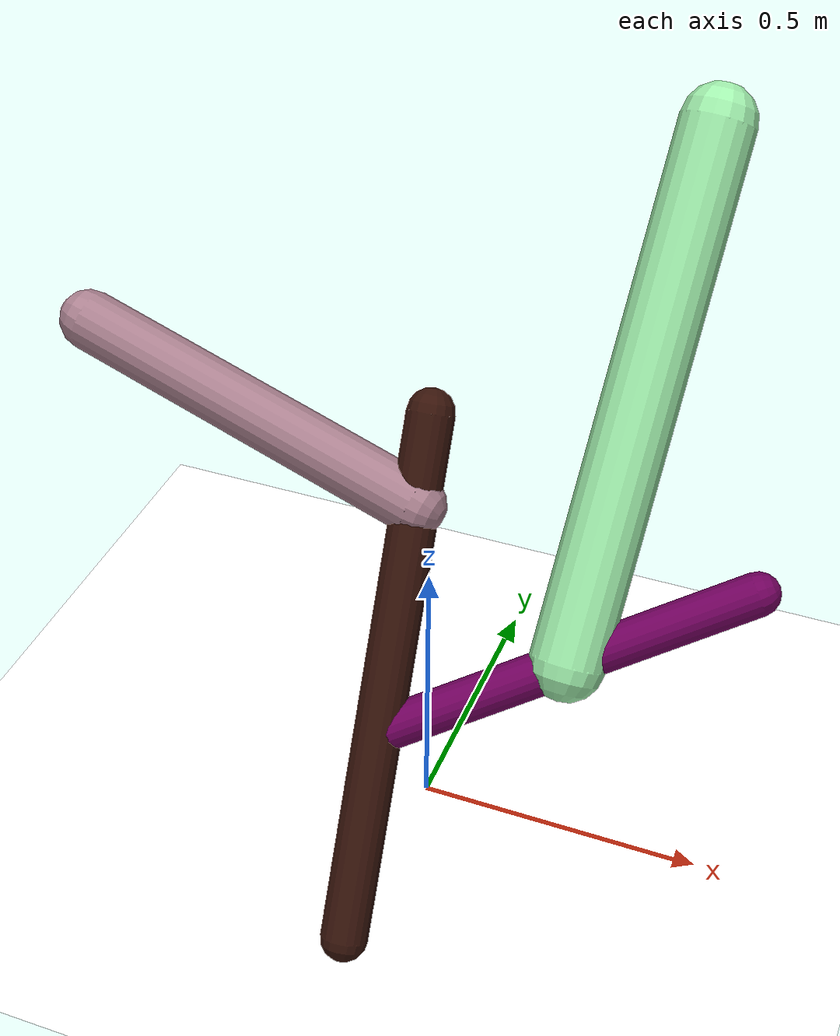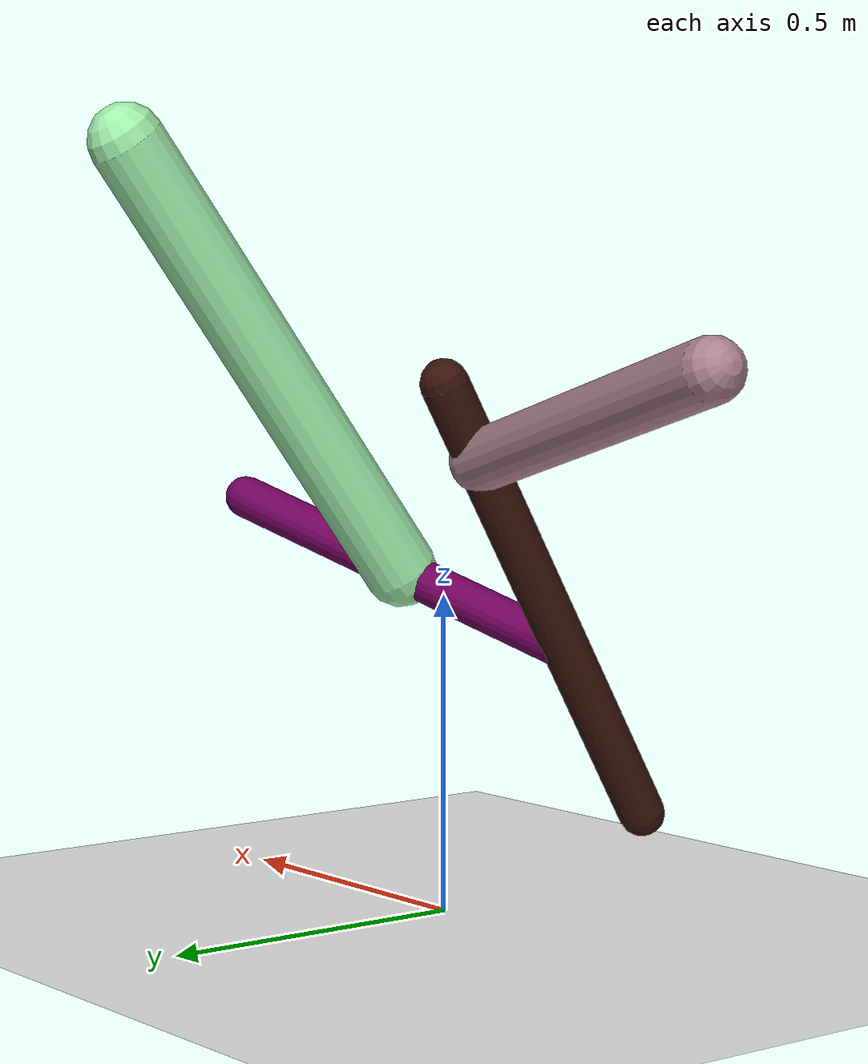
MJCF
<mujoco model="morphology">
  <option timestep="0.01"/>
  <default>
    <default class="/"/>
    <default class="0/"/>
    <default class="0/1/"/>
    <default class="0/1/2/"/>
    <default class="0/3/"/>
  </default>
  <asset>
    <texture name="texplane" type="2d" builtin="checker" rgb1="0.10000000000000001 0.20000000000000001 0.29999999999999999" rgb2="0.20000000000000001 0.29999999999999999 0.40000000000000002" width="300" height="300"/>
    <material name="MatPlane" class="/" texture="texplane" texrepeat="20 20" specular="1" shininess="1" reflectance="0.5"/>
  </asset>
  <worldbody>
    <light name="//unnamed_light_0" class="/" directional="true" pos="0 0 1.5" dir="0 0 -1.3" cutoff="100" exponent="1" diffuse="1 1 1" specular="0.10000000000000001 0.10000000000000001 0.10000000000000001"/>
    <geom name="ground" class="/" type="plane" size="15 15 0.5" material="MatPlane" rgba="1 1 1 1"/>
    <site name="body" class="/" size="9.9999999999999995e-07 9.9999999999999995e-07 9.9999999999999995e-07" pos="0 0 0.83015075922012327"/>
    <body pos="0 0 0.83015075922012327" name="0/">
      <freejoint name="0/"/>
      <geom name="0/geom" class="0/" type="capsule" contype="1" conaffinity="1" condim="3" size="0.039179312641141939" rgba="0.21542325064921308 0.076142153702728921 0.041197919339613143 1" friction="0.59999999999999998 0.10000000000000001 0.10000000000000001" fromto="0 0 0 0.029095847067996061 -0.44674231855707353 -0.73015075886629333"/>
      <site name="0/end0" class="0/" size="0.0050000000000000001" pos="0.029095847067996061 -0.44674231855707353 -0.73015075886629333"/>
      <site name="0/attach1" class="0/" size="9.9999999999999995e-07 9.9999999999999995e-07 9.9999999999999995e-07" pos="0.017434994079992282 -0.26769970508581781 -0.43752546982343171"/>
      <body pos="0.017434994079992282 -0.26769970508581781 -0.43752546982343171" name="0/1/">
        <joint name="0/1/joint/" class="0/" type="hinge" axis="0 0 1" limited="true" range="-39.501779957731102 39.501779957731102"/>
        <geom name="0/1/geom" class="0/1/" type="capsule" contype="1" conaffinity="1" condim="3" size="0.035498298403293334" rgba="0.43360503629423641 0.00039080240934319388 0.36111949650194941 1" friction="0.59999999999999998 0.10000000000000001 0.10000000000000001" fromto="0 0 0 0.51951581303125383 0.2748238535043277 0.231707003502158"/>
        <site name="0/1/end1" class="0/1/" size="0.0050000000000000001" pos="0.51951581303125383 0.2748238535043277 0.231707003502158"/>
        <site name="0/1/attach2" class="0/1/" size="9.9999999999999995e-07 9.9999999999999995e-07 9.9999999999999995e-07" pos="0.26241766106697623 0.1388189368504946 0.11703976738859348"/>
        <body pos="0.26241766106697623 0.1388189368504946 0.11703976738859348" name="0/1/2/">
          <joint name="0/1/2/joint/" class="0/1/" type="hinge" axis="-2.7755575615628914e-17 -0.64458550307769047 0.76453222902771123" limited="true" range="-61.48008092545227 61.48008092545227"/>
          <geom name="0/1/2/geom" class="0/1/2/" type="capsule" contype="1" conaffinity="1" condim="3" size="0.061665398346644522" rgba="0.62154767923239607 0.92648600441594531 0.66735441004820317 1" friction="0.59999999999999998 0.10000000000000001 0.10000000000000001" fromto="0 0 0 0.039767928687590492 0.50553555742207901 0.69552112063465454"/>
          <site name="0/1/2/end2" class="0/1/2/" size="0.0050000000000000001" pos="0.039767928687590492 0.50553555742207901 0.69552112063465454"/>
        </body>
      </body>
      <site name="0/attach3" class="0/" size="9.9999999999999995e-07 9.9999999999999995e-07 9.9999999999999995e-07" pos="0.0049372826325186974 -0.075807832144166171 -0.12389949165068885"/>
      <body pos="0.0049372826325186974 -0.075807832144166171 -0.12389949165068885" name="0/3/">
        <joint name="0/3/joint/" class="0/" type="hinge" axis="0 1 0" limited="true" range="-68.397349359483741 68.397349359483741"/>
        <geom name="0/3/geom" class="0/3/" type="capsule" contype="1" conaffinity="1" condim="3" size="0.049926283163599081" rgba="0.66170420003889163 0.50135099687756646 0.55601860931442282 1" friction="0.59999999999999998 0.10000000000000001 0.10000000000000001" fromto="0 0 0 -0.60064513030512512 0.076897369703345486 0.15484360031097655"/>
        <site name="0/3/end3" class="0/3/" size="0.0050000000000000001" pos="-0.60064513030512512 0.076897369703345486 0.15484360031097655"/>
      </body>
      <camera name="0/iso" class="0/" mode="trackcom" pos="-2.2999999999999998 -2.2999999999999998 1" xyaxes="0.45000000000000001 -0.45000000000000001 0 0.29999999999999999 0.14999999999999999 0.93999999999999995"/>
    </body>
  </worldbody>
  <actuator>
    <motor name="0/1/motor" class="0/1/" ctrllimited="true" ctrlrange="-1 1" gear="91" joint="0/1/joint/"/>
    <motor name="0/1/2/motor" class="0/1/2/" ctrllimited="true" ctrlrange="-1 1" gear="69" joint="0/1/2/joint/"/>
    <motor name="0/3/motor" class="0/3/" ctrllimited="true" ctrlrange="-1 1" gear="92" joint="0/3/joint/"/>
  </actuator>
  <sensor>
    <subtreelinvel name="velocity" body="0/"/>
  </sensor>
</mujoco>
